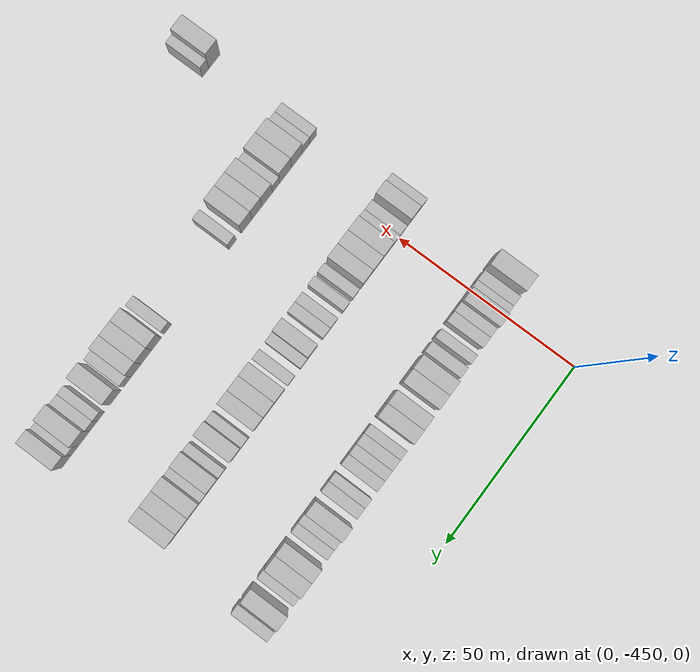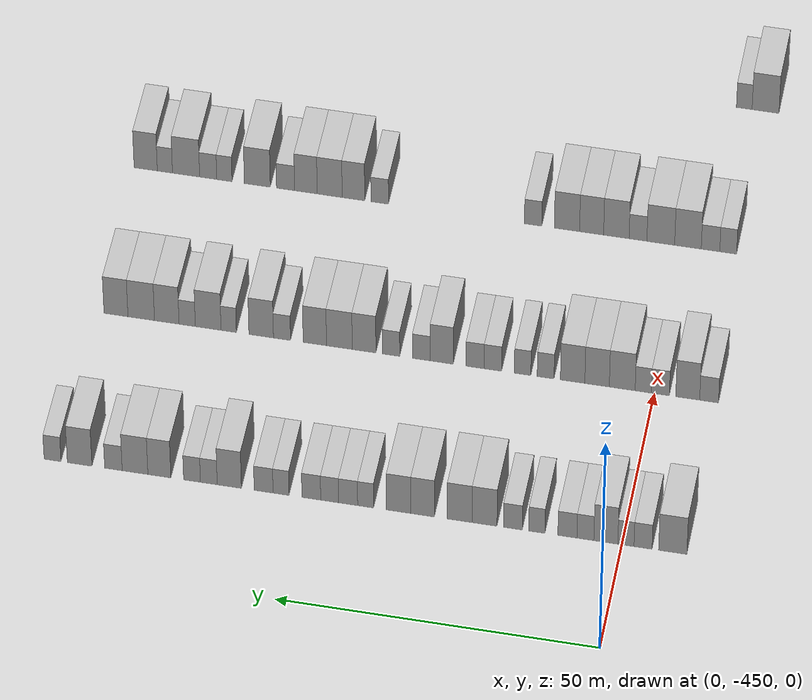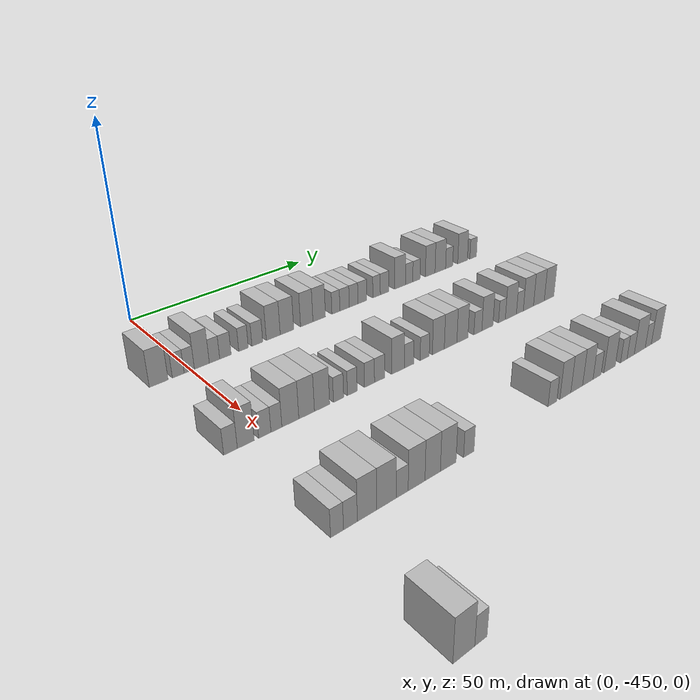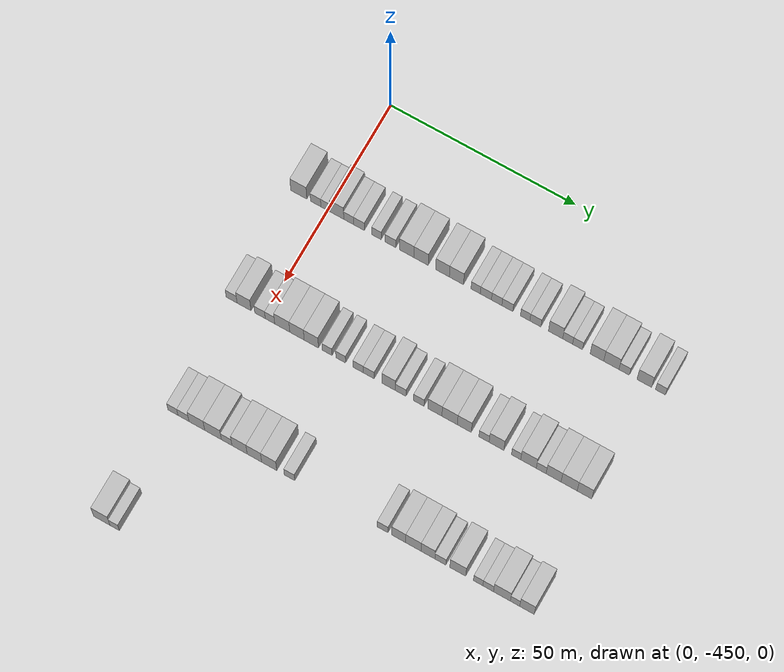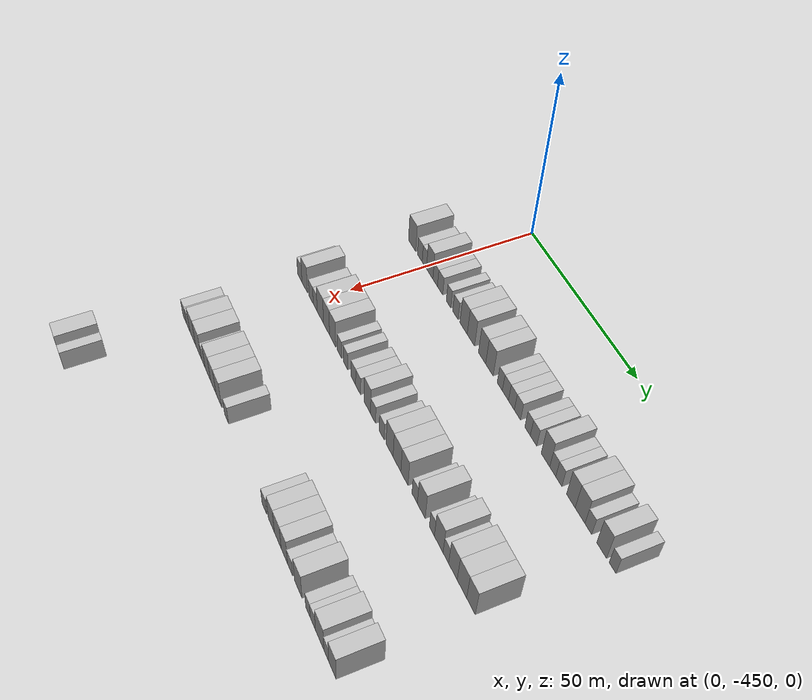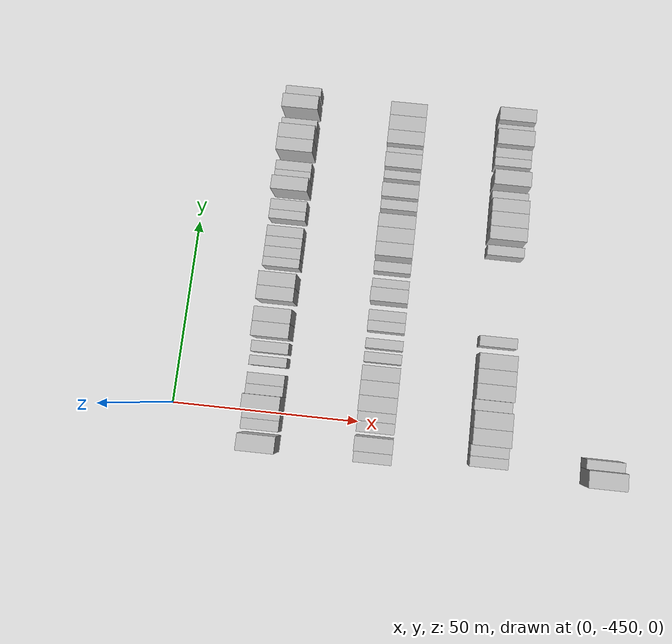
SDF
<sdf version="1.6">
 <world name="default">
  <model name="building_1">
   <static>1</static>
   <pose>25.0000 -457.8146 0 0.000000 0.000000 0.000000</pose>
   <link name="link">
    <pose>0 0 4.50 0 0 0</pose>
    <collision name="collision"><geometry><box><size>10.0000 4.3709 9.0000</size></box></geometry></collision>
    <visual name="visual">
     <cast_shadows>0</cast_shadows>
     <geometry><box><size>10.0000 4.3709 9.0000</size></box></geometry>
     <material>
      <script>
       <uri>model://HANNAS_wall/materials/scripts</uri>
       <uri>model://HANNAS_wall/materials/textures</uri>
       <name>vrc/HANNAS_wall</name>
      </script>
     </material>
    </visual>
   </link>
  </model>
  <model name="building_2">
   <static>1</static>
   <pose>25.0000 -453.2266 0 0.000000 0.000000 0.000000</pose>
   <link name="link">
    <pose>0 0 3.00 0 0 0</pose>
    <collision name="collision"><geometry><box><size>10.0000 2.8049 6.0000</size></box></geometry></collision>
    <visual name="visual">
     <cast_shadows>0</cast_shadows>
     <geometry><box><size>10.0000 2.8049 6.0000</size></box></geometry>
     <material>
      <script>
       <uri>model://HANNAS_wall/materials/scripts</uri>
       <uri>model://HANNAS_wall/materials/textures</uri>
       <name>vrc/HANNAS_wall</name>
      </script>
     </material>
    </visual>
   </link>
  </model>
  <model name="building_3">
   <static>1</static>
   <pose>25.0000 -450.5729 0 0.000000 0.000000 0.000000</pose>
   <link name="link">
    <pose>0 0 3.00 0 0 0</pose>
    <collision name="collision"><geometry><box><size>10.0000 2.5025 6.0000</size></box></geometry></collision>
    <visual name="visual">
     <cast_shadows>0</cast_shadows>
     <geometry><box><size>10.0000 2.5025 6.0000</size></box></geometry>
     <material>
      <script>
       <uri>model://HANNAS_wall/materials/scripts</uri>
       <uri>model://HANNAS_wall/materials/textures</uri>
       <name>vrc/HANNAS_wall</name>
      </script>
     </material>
    </visual>
   </link>
  </model>
  <model name="building_4">
   <static>1</static>
   <pose>25.0000 -447.4680 0 0.000000 0.000000 0.000000</pose>
   <link name="link">
    <pose>0 0 4.50 0 0 0</pose>
    <collision name="collision"><geometry><box><size>10.0000 3.7072 9.0000</size></box></geometry></collision>
    <visual name="visual">
     <cast_shadows>0</cast_shadows>
     <geometry><box><size>10.0000 3.7072 9.0000</size></box></geometry>
     <material>
      <script>
       <uri>model://HANNAS_wall/materials/scripts</uri>
       <uri>model://HANNAS_wall/materials/textures</uri>
       <name>vrc/HANNAS_wall</name>
      </script>
     </material>
    </visual>
   </link>
  </model>
  <model name="building_5">
   <static>1</static>
   <pose>25.0000 -444.3006 0 0.000000 0.000000 0.000000</pose>
   <link name="link">
    <pose>0 0 3.00 0 0 0</pose>
    <collision name="collision"><geometry><box><size>10.0000 2.6276 6.0000</size></box></geometry></collision>
    <visual name="visual">
     <cast_shadows>0</cast_shadows>
     <geometry><box><size>10.0000 2.6276 6.0000</size></box></geometry>
     <material>
      <script>
       <uri>model://HANNAS_wall/materials/scripts</uri>
       <uri>model://HANNAS_wall/materials/textures</uri>
       <name>vrc/HANNAS_wall</name>
      </script>
     </material>
    </visual>
   </link>
  </model>
  <model name="building_6">
   <static>1</static>
   <pose>25.0000 -441.5114 0 0.000000 0.000000 0.000000</pose>
   <link name="link">
    <pose>0 0 3.00 0 0 0</pose>
    <collision name="collision"><geometry><box><size>10.0000 2.9508 6.0000</size></box></geometry></collision>
    <visual name="visual">
     <cast_shadows>0</cast_shadows>
     <geometry><box><size>10.0000 2.9508 6.0000</size></box></geometry>
     <material>
      <script>
       <uri>model://HANNAS_wall/materials/scripts</uri>
       <uri>model://HANNAS_wall/materials/textures</uri>
       <name>vrc/HANNAS_wall</name>
      </script>
     </material>
    </visual>
   </link>
  </model>
  <model name="building_7">
   <static>1</static>
   <pose>25.0000 -436.7794 0 0.000000 0.000000 0.000000</pose>
   <link name="link">
    <pose>0 0 3.00 0 0 0</pose>
    <collision name="collision"><geometry><box><size>10.0000 2.5132 6.0000</size></box></geometry></collision>
    <visual name="visual">
     <cast_shadows>0</cast_shadows>
     <geometry><box><size>10.0000 2.5132 6.0000</size></box></geometry>
     <material>
      <script>
       <uri>model://HANNAS_wall/materials/scripts</uri>
       <uri>model://HANNAS_wall/materials/textures</uri>
       <name>vrc/HANNAS_wall</name>
      </script>
     </material>
    </visual>
   </link>
  </model>
  <model name="building_8">
   <static>1</static>
   <pose>25.0000 -433.0568 0 0.000000 0.000000 0.000000</pose>
   <link name="link">
    <pose>0 0 3.00 0 0 0</pose>
    <collision name="collision"><geometry><box><size>10.0000 2.9321 6.0000</size></box></geometry></collision>
    <visual name="visual">
     <cast_shadows>0</cast_shadows>
     <geometry><box><size>10.0000 2.9321 6.0000</size></box></geometry>
     <material>
      <script>
       <uri>model://HANNAS_wall/materials/scripts</uri>
       <uri>model://HANNAS_wall/materials/textures</uri>
       <name>vrc/HANNAS_wall</name>
      </script>
     </material>
    </visual>
   </link>
  </model>
  <model name="building_9">
   <static>1</static>
   <pose>25.0000 -428.6497 0 0.000000 0.000000 0.000000</pose>
   <link name="link">
    <pose>0 0 4.50 0 0 0</pose>
    <collision name="collision"><geometry><box><size>10.0000 3.8821 9.0000</size></box></geometry></collision>
    <visual name="visual">
     <cast_shadows>0</cast_shadows>
     <geometry><box><size>10.0000 3.8821 9.0000</size></box></geometry>
     <material>
      <script>
       <uri>model://HANNAS_wall/materials/scripts</uri>
       <uri>model://HANNAS_wall/materials/textures</uri>
       <name>vrc/HANNAS_wall</name>
      </script>
     </material>
    </visual>
   </link>
  </model>
  <model name="building_10">
   <static>1</static>
   <pose>25.0000 -424.7814 0 0.000000 0.000000 0.000000</pose>
   <link name="link">
    <pose>0 0 4.50 0 0 0</pose>
    <collision name="collision"><geometry><box><size>10.0000 3.8546 9.0000</size></box></geometry></collision>
    <visual name="visual">
     <cast_shadows>0</cast_shadows>
     <geometry><box><size>10.0000 3.8546 9.0000</size></box></geometry>
     <material>
      <script>
       <uri>model://HANNAS_wall/materials/scripts</uri>
       <uri>model://HANNAS_wall/materials/textures</uri>
       <name>vrc/HANNAS_wall</name>
      </script>
     </material>
    </visual>
   </link>
  </model>
  <model name="building_11">
   <static>1</static>
   <pose>25.0000 -419.0202 0 0.000000 0.000000 0.000000</pose>
   <link name="link">
    <pose>0 0 4.50 0 0 0</pose>
    <collision name="collision"><geometry><box><size>10.0000 3.6678 9.0000</size></box></geometry></collision>
    <visual name="visual">
     <cast_shadows>0</cast_shadows>
     <geometry><box><size>10.0000 3.6678 9.0000</size></box></geometry>
     <material>
      <script>
       <uri>model://HANNAS_wall/materials/scripts</uri>
       <uri>model://HANNAS_wall/materials/textures</uri>
       <name>vrc/HANNAS_wall</name>
      </script>
     </material>
    </visual>
   </link>
  </model>
  <model name="building_12">
   <static>1</static>
   <pose>25.0000 -415.2905 0 0.000000 0.000000 0.000000</pose>
   <link name="link">
    <pose>0 0 4.50 0 0 0</pose>
    <collision name="collision"><geometry><box><size>10.0000 3.7915 9.0000</size></box></geometry></collision>
    <visual name="visual">
     <cast_shadows>0</cast_shadows>
     <geometry><box><size>10.0000 3.7915 9.0000</size></box></geometry>
     <material>
      <script>
       <uri>model://HANNAS_wall/materials/scripts</uri>
       <uri>model://HANNAS_wall/materials/textures</uri>
       <name>vrc/HANNAS_wall</name>
      </script>
     </material>
    </visual>
   </link>
  </model>
  <model name="building_13">
   <static>1</static>
   <pose>25.0000 -410.1460 0 0.000000 0.000000 0.000000</pose>
   <link name="link">
    <pose>0 0 3.00 0 0 0</pose>
    <collision name="collision"><geometry><box><size>10.0000 2.4976 6.0000</size></box></geometry></collision>
    <visual name="visual">
     <cast_shadows>0</cast_shadows>
     <geometry><box><size>10.0000 2.4976 6.0000</size></box></geometry>
     <material>
      <script>
       <uri>model://HANNAS_wall/materials/scripts</uri>
       <uri>model://HANNAS_wall/materials/textures</uri>
       <name>vrc/HANNAS_wall</name>
      </script>
     </material>
    </visual>
   </link>
  </model>
  <model name="building_14">
   <static>1</static>
   <pose>25.0000 -407.4100 0 0.000000 0.000000 0.000000</pose>
   <link name="link">
    <pose>0 0 3.00 0 0 0</pose>
    <collision name="collision"><geometry><box><size>10.0000 2.9745 6.0000</size></box></geometry></collision>
    <visual name="visual">
     <cast_shadows>0</cast_shadows>
     <geometry><box><size>10.0000 2.9745 6.0000</size></box></geometry>
     <material>
      <script>
       <uri>model://HANNAS_wall/materials/scripts</uri>
       <uri>model://HANNAS_wall/materials/textures</uri>
       <name>vrc/HANNAS_wall</name>
      </script>
     </material>
    </visual>
   </link>
  </model>
  <model name="building_15">
   <static>1</static>
   <pose>25.0000 -404.5269 0 0.000000 0.000000 0.000000</pose>
   <link name="link">
    <pose>0 0 3.00 0 0 0</pose>
    <collision name="collision"><geometry><box><size>10.0000 2.7917 6.0000</size></box></geometry></collision>
    <visual name="visual">
     <cast_shadows>0</cast_shadows>
     <geometry><box><size>10.0000 2.7917 6.0000</size></box></geometry>
     <material>
      <script>
       <uri>model://HANNAS_wall/materials/scripts</uri>
       <uri>model://HANNAS_wall/materials/textures</uri>
       <name>vrc/HANNAS_wall</name>
      </script>
     </material>
    </visual>
   </link>
  </model>
  <model name="building_16">
   <static>1</static>
   <pose>25.0000 -401.6657 0 0.000000 0.000000 0.000000</pose>
   <link name="link">
    <pose>0 0 3.00 0 0 0</pose>
    <collision name="collision"><geometry><box><size>10.0000 2.9307 6.0000</size></box></geometry></collision>
    <visual name="visual">
     <cast_shadows>0</cast_shadows>
     <geometry><box><size>10.0000 2.9307 6.0000</size></box></geometry>
     <material>
      <script>
       <uri>model://HANNAS_wall/materials/scripts</uri>
       <uri>model://HANNAS_wall/materials/textures</uri>
       <name>vrc/HANNAS_wall</name>
      </script>
     </material>
    </visual>
   </link>
  </model>
  <model name="building_17">
   <static>1</static>
   <pose>25.0000 -396.9440 0 0.000000 0.000000 0.000000</pose>
   <link name="link">
    <pose>0 0 3.00 0 0 0</pose>
    <collision name="collision"><geometry><box><size>10.0000 2.5125 6.0000</size></box></geometry></collision>
    <visual name="visual">
     <cast_shadows>0</cast_shadows>
     <geometry><box><size>10.0000 2.5125 6.0000</size></box></geometry>
     <material>
      <script>
       <uri>model://HANNAS_wall/materials/scripts</uri>
       <uri>model://HANNAS_wall/materials/textures</uri>
       <name>vrc/HANNAS_wall</name>
      </script>
     </material>
    </visual>
   </link>
  </model>
  <model name="building_18">
   <static>1</static>
   <pose>25.0000 -394.2146 0 0.000000 0.000000 0.000000</pose>
   <link name="link">
    <pose>0 0 3.00 0 0 0</pose>
    <collision name="collision"><geometry><box><size>10.0000 2.9463 6.0000</size></box></geometry></collision>
    <visual name="visual">
     <cast_shadows>0</cast_shadows>
     <geometry><box><size>10.0000 2.9463 6.0000</size></box></geometry>
     <material>
      <script>
       <uri>model://HANNAS_wall/materials/scripts</uri>
       <uri>model://HANNAS_wall/materials/textures</uri>
       <name>vrc/HANNAS_wall</name>
      </script>
     </material>
    </visual>
   </link>
  </model>
  <model name="building_19">
   <static>1</static>
   <pose>25.0000 -388.8456 0 0.000000 0.000000 0.000000</pose>
   <link name="link">
    <pose>0 0 4.50 0 0 0</pose>
    <collision name="collision"><geometry><box><size>10.0000 3.7918 9.0000</size></box></geometry></collision>
    <visual name="visual">
     <cast_shadows>0</cast_shadows>
     <geometry><box><size>10.0000 3.7918 9.0000</size></box></geometry>
     <material>
      <script>
       <uri>model://HANNAS_wall/materials/scripts</uri>
       <uri>model://HANNAS_wall/materials/textures</uri>
       <name>vrc/HANNAS_wall</name>
      </script>
     </material>
    </visual>
   </link>
  </model>
  <model name="building_20">
   <static>1</static>
   <pose>25.0000 -385.6355 0 0.000000 0.000000 0.000000</pose>
   <link name="link">
    <pose>0 0 3.00 0 0 0</pose>
    <collision name="collision"><geometry><box><size>10.0000 2.6284 6.0000</size></box></geometry></collision>
    <visual name="visual">
     <cast_shadows>0</cast_shadows>
     <geometry><box><size>10.0000 2.6284 6.0000</size></box></geometry>
     <material>
      <script>
       <uri>model://HANNAS_wall/materials/scripts</uri>
       <uri>model://HANNAS_wall/materials/textures</uri>
       <name>vrc/HANNAS_wall</name>
      </script>
     </material>
    </visual>
   </link>
  </model>
  <model name="building_21">
   <static>1</static>
   <pose>25.0000 -383.0062 0 0.000000 0.000000 0.000000</pose>
   <link name="link">
    <pose>0 0 3.00 0 0 0</pose>
    <collision name="collision"><geometry><box><size>10.0000 2.6303 6.0000</size></box></geometry></collision>
    <visual name="visual">
     <cast_shadows>0</cast_shadows>
     <geometry><box><size>10.0000 2.6303 6.0000</size></box></geometry>
     <material>
      <script>
       <uri>model://HANNAS_wall/materials/scripts</uri>
       <uri>model://HANNAS_wall/materials/textures</uri>
       <name>vrc/HANNAS_wall</name>
      </script>
     </material>
    </visual>
   </link>
  </model>
  <model name="building_22">
   <static>1</static>
   <pose>25.0000 -377.8843 0 0.000000 0.000000 0.000000</pose>
   <link name="link">
    <pose>0 0 4.50 0 0 0</pose>
    <collision name="collision"><geometry><box><size>10.0000 3.6136 9.0000</size></box></geometry></collision>
    <visual name="visual">
     <cast_shadows>0</cast_shadows>
     <geometry><box><size>10.0000 3.6136 9.0000</size></box></geometry>
     <material>
      <script>
       <uri>model://HANNAS_wall/materials/scripts</uri>
       <uri>model://HANNAS_wall/materials/textures</uri>
       <name>vrc/HANNAS_wall</name>
      </script>
     </material>
    </visual>
   </link>
  </model>
  <model name="building_23">
   <static>1</static>
   <pose>25.0000 -374.0628 0 0.000000 0.000000 0.000000</pose>
   <link name="link">
    <pose>0 0 4.50 0 0 0</pose>
    <collision name="collision"><geometry><box><size>10.0000 4.0295 9.0000</size></box></geometry></collision>
    <visual name="visual">
     <cast_shadows>0</cast_shadows>
     <geometry><box><size>10.0000 4.0295 9.0000</size></box></geometry>
     <material>
      <script>
       <uri>model://HANNAS_wall/materials/scripts</uri>
       <uri>model://HANNAS_wall/materials/textures</uri>
       <name>vrc/HANNAS_wall</name>
      </script>
     </material>
    </visual>
   </link>
  </model>
  <model name="building_24">
   <static>1</static>
   <pose>25.0000 -370.6754 0 0.000000 0.000000 0.000000</pose>
   <link name="link">
    <pose>0 0 3.00 0 0 0</pose>
    <collision name="collision"><geometry><box><size>10.0000 2.7452 6.0000</size></box></geometry></collision>
    <visual name="visual">
     <cast_shadows>0</cast_shadows>
     <geometry><box><size>10.0000 2.7452 6.0000</size></box></geometry>
     <material>
      <script>
       <uri>model://HANNAS_wall/materials/scripts</uri>
       <uri>model://HANNAS_wall/materials/textures</uri>
       <name>vrc/HANNAS_wall</name>
      </script>
     </material>
    </visual>
   </link>
  </model>
  <model name="building_25">
   <static>1</static>
   <pose>25.0000 -365.3675 0 0.000000 0.000000 0.000000</pose>
   <link name="link">
    <pose>0 0 4.50 0 0 0</pose>
    <collision name="collision"><geometry><box><size>10.0000 3.8706 9.0000</size></box></geometry></collision>
    <visual name="visual">
     <cast_shadows>0</cast_shadows>
     <geometry><box><size>10.0000 3.8706 9.0000</size></box></geometry>
     <material>
      <script>
       <uri>model://HANNAS_wall/materials/scripts</uri>
       <uri>model://HANNAS_wall/materials/textures</uri>
       <name>vrc/HANNAS_wall</name>
      </script>
     </material>
    </visual>
   </link>
  </model>
  <model name="building_26">
   <static>1</static>
   <pose>25.0000 -361.1058 0 0.000000 0.000000 0.000000</pose>
   <link name="link">
    <pose>0 0 3.00 0 0 0</pose>
    <collision name="collision"><geometry><box><size>10.0000 2.6527 6.0000</size></box></geometry></collision>
    <visual name="visual">
     <cast_shadows>0</cast_shadows>
     <geometry><box><size>10.0000 2.6527 6.0000</size></box></geometry>
     <material>
      <script>
       <uri>model://HANNAS_wall/materials/scripts</uri>
       <uri>model://HANNAS_wall/materials/textures</uri>
       <name>vrc/HANNAS_wall</name>
      </script>
     </material>
    </visual>
   </link>
  </model>
  <model name="building_226">
   <static>1</static>
   <pose>55.0000 -458.5205 0 0.000000 0.000000 0.000000</pose>
   <link name="link">
    <pose>0 0 3.00 0 0 0</pose>
    <collision name="collision"><geometry><box><size>10.0000 2.9590 6.0000</size></box></geometry></collision>
    <visual name="visual">
     <cast_shadows>0</cast_shadows>
     <geometry><box><size>10.0000 2.9590 6.0000</size></box></geometry>
     <material>
      <script>
       <uri>model://HANNAS_wall/materials/scripts</uri>
       <uri>model://HANNAS_wall/materials/textures</uri>
       <name>vrc/HANNAS_wall</name>
      </script>
     </material>
    </visual>
   </link>
  </model>
  <model name="building_227">
   <static>1</static>
   <pose>55.0000 -455.1631 0 0.000000 0.000000 0.000000</pose>
   <link name="link">
    <pose>0 0 4.50 0 0 0</pose>
    <collision name="collision"><geometry><box><size>10.0000 3.7557 9.0000</size></box></geometry></collision>
    <visual name="visual">
     <cast_shadows>0</cast_shadows>
     <geometry><box><size>10.0000 3.7557 9.0000</size></box></geometry>
     <material>
      <script>
       <uri>model://HANNAS_wall/materials/scripts</uri>
       <uri>model://HANNAS_wall/materials/textures</uri>
       <name>vrc/HANNAS_wall</name>
      </script>
     </material>
    </visual>
   </link>
  </model>
  <model name="building_228">
   <static>1</static>
   <pose>55.0000 -450.8732 0 0.000000 0.000000 0.000000</pose>
   <link name="link">
    <pose>0 0 3.00 0 0 0</pose>
    <collision name="collision"><geometry><box><size>10.0000 2.8242 6.0000</size></box></geometry></collision>
    <visual name="visual">
     <cast_shadows>0</cast_shadows>
     <geometry><box><size>10.0000 2.8242 6.0000</size></box></geometry>
     <material>
      <script>
       <uri>model://HANNAS_wall/materials/scripts</uri>
       <uri>model://HANNAS_wall/materials/textures</uri>
       <name>vrc/HANNAS_wall</name>
      </script>
     </material>
    </visual>
   </link>
  </model>
  <model name="building_229">
   <static>1</static>
   <pose>55.0000 -448.1859 0 0.000000 0.000000 0.000000</pose>
   <link name="link">
    <pose>0 0 3.00 0 0 0</pose>
    <collision name="collision"><geometry><box><size>10.0000 2.5504 6.0000</size></box></geometry></collision>
    <visual name="visual">
     <cast_shadows>0</cast_shadows>
     <geometry><box><size>10.0000 2.5504 6.0000</size></box></geometry>
     <material>
      <script>
       <uri>model://HANNAS_wall/materials/scripts</uri>
       <uri>model://HANNAS_wall/materials/textures</uri>
       <name>vrc/HANNAS_wall</name>
      </script>
     </material>
    </visual>
   </link>
  </model>
  <model name="building_230">
   <static>1</static>
   <pose>55.0000 -444.8802 0 0.000000 0.000000 0.000000</pose>
   <link name="link">
    <pose>0 0 4.50 0 0 0</pose>
    <collision name="collision"><geometry><box><size>10.0000 4.0610 9.0000</size></box></geometry></collision>
    <visual name="visual">
     <cast_shadows>0</cast_shadows>
     <geometry><box><size>10.0000 4.0610 9.0000</size></box></geometry>
     <material>
      <script>
       <uri>model://HANNAS_wall/materials/scripts</uri>
       <uri>model://HANNAS_wall/materials/textures</uri>
       <name>vrc/HANNAS_wall</name>
      </script>
     </material>
    </visual>
   </link>
  </model>
  <model name="building_231">
   <static>1</static>
   <pose>55.0000 -440.9243 0 0.000000 0.000000 0.000000</pose>
   <link name="link">
    <pose>0 0 4.50 0 0 0</pose>
    <collision name="collision"><geometry><box><size>10.0000 3.8509 9.0000</size></box></geometry></collision>
    <visual name="visual">
     <cast_shadows>0</cast_shadows>
     <geometry><box><size>10.0000 3.8509 9.0000</size></box></geometry>
     <material>
      <script>
       <uri>model://HANNAS_wall/materials/scripts</uri>
       <uri>model://HANNAS_wall/materials/textures</uri>
       <name>vrc/HANNAS_wall</name>
      </script>
     </material>
    </visual>
   </link>
  </model>
  <model name="building_232">
   <static>1</static>
   <pose>55.0000 -437.0763 0 0.000000 0.000000 0.000000</pose>
   <link name="link">
    <pose>0 0 4.50 0 0 0</pose>
    <collision name="collision"><geometry><box><size>10.0000 3.8453 9.0000</size></box></geometry></collision>
    <visual name="visual">
     <cast_shadows>0</cast_shadows>
     <geometry><box><size>10.0000 3.8453 9.0000</size></box></geometry>
     <material>
      <script>
       <uri>model://HANNAS_wall/materials/scripts</uri>
       <uri>model://HANNAS_wall/materials/textures</uri>
       <name>vrc/HANNAS_wall</name>
      </script>
     </material>
    </visual>
   </link>
  </model>
  <model name="building_233">
   <static>1</static>
   <pose>55.0000 -432.8257 0 0.000000 0.000000 0.000000</pose>
   <link name="link">
    <pose>0 0 3.00 0 0 0</pose>
    <collision name="collision"><geometry><box><size>10.0000 2.6558 6.0000</size></box></geometry></collision>
    <visual name="visual">
     <cast_shadows>0</cast_shadows>
     <geometry><box><size>10.0000 2.6558 6.0000</size></box></geometry>
     <material>
      <script>
       <uri>model://HANNAS_wall/materials/scripts</uri>
       <uri>model://HANNAS_wall/materials/textures</uri>
       <name>vrc/HANNAS_wall</name>
      </script>
     </material>
    </visual>
   </link>
  </model>
  <model name="building_234">
   <static>1</static>
   <pose>55.0000 -429.1979 0 0.000000 0.000000 0.000000</pose>
   <link name="link">
    <pose>0 0 3.00 0 0 0</pose>
    <collision name="collision"><geometry><box><size>10.0000 2.5998 6.0000</size></box></geometry></collision>
    <visual name="visual">
     <cast_shadows>0</cast_shadows>
     <geometry><box><size>10.0000 2.5998 6.0000</size></box></geometry>
     <material>
      <script>
       <uri>model://HANNAS_wall/materials/scripts</uri>
       <uri>model://HANNAS_wall/materials/textures</uri>
       <name>vrc/HANNAS_wall</name>
      </script>
     </material>
    </visual>
   </link>
  </model>
  <model name="building_235">
   <static>1</static>
   <pose>55.0000 -424.5097 0 0.000000 0.000000 0.000000</pose>
   <link name="link">
    <pose>0 0 3.00 0 0 0</pose>
    <collision name="collision"><geometry><box><size>10.0000 2.7767 6.0000</size></box></geometry></collision>
    <visual name="visual">
     <cast_shadows>0</cast_shadows>
     <geometry><box><size>10.0000 2.7767 6.0000</size></box></geometry>
     <material>
      <script>
       <uri>model://HANNAS_wall/materials/scripts</uri>
       <uri>model://HANNAS_wall/materials/textures</uri>
       <name>vrc/HANNAS_wall</name>
      </script>
     </material>
    </visual>
   </link>
  </model>
  <model name="building_236">
   <static>1</static>
   <pose>55.0000 -421.6836 0 0.000000 0.000000 0.000000</pose>
   <link name="link">
    <pose>0 0 3.00 0 0 0</pose>
    <collision name="collision"><geometry><box><size>10.0000 2.8755 6.0000</size></box></geometry></collision>
    <visual name="visual">
     <cast_shadows>0</cast_shadows>
     <geometry><box><size>10.0000 2.8755 6.0000</size></box></geometry>
     <material>
      <script>
       <uri>model://HANNAS_wall/materials/scripts</uri>
       <uri>model://HANNAS_wall/materials/textures</uri>
       <name>vrc/HANNAS_wall</name>
      </script>
     </material>
    </visual>
   </link>
  </model>
  <model name="building_237">
   <static>1</static>
   <pose>55.0000 -416.4143 0 0.000000 0.000000 0.000000</pose>
   <link name="link">
    <pose>0 0 4.50 0 0 0</pose>
    <collision name="collision"><geometry><box><size>10.0000 3.6630 9.0000</size></box></geometry></collision>
    <visual name="visual">
     <cast_shadows>0</cast_shadows>
     <geometry><box><size>10.0000 3.6630 9.0000</size></box></geometry>
     <material>
      <script>
       <uri>model://HANNAS_wall/materials/scripts</uri>
       <uri>model://HANNAS_wall/materials/textures</uri>
       <name>vrc/HANNAS_wall</name>
      </script>
     </material>
    </visual>
   </link>
  </model>
  <model name="building_238">
   <static>1</static>
   <pose>55.0000 -413.1836 0 0.000000 0.000000 0.000000</pose>
   <link name="link">
    <pose>0 0 3.00 0 0 0</pose>
    <collision name="collision"><geometry><box><size>10.0000 2.7984 6.0000</size></box></geometry></collision>
    <visual name="visual">
     <cast_shadows>0</cast_shadows>
     <geometry><box><size>10.0000 2.7984 6.0000</size></box></geometry>
     <material>
      <script>
       <uri>model://HANNAS_wall/materials/scripts</uri>
       <uri>model://HANNAS_wall/materials/textures</uri>
       <name>vrc/HANNAS_wall</name>
      </script>
     </material>
    </visual>
   </link>
  </model>
  <model name="building_239">
   <static>1</static>
   <pose>55.0000 -408.3996 0 0.000000 0.000000 0.000000</pose>
   <link name="link">
    <pose>0 0 3.00 0 0 0</pose>
    <collision name="collision"><geometry><box><size>10.0000 2.7697 6.0000</size></box></geometry></collision>
    <visual name="visual">
     <cast_shadows>0</cast_shadows>
     <geometry><box><size>10.0000 2.7697 6.0000</size></box></geometry>
     <material>
      <script>
       <uri>model://HANNAS_wall/materials/scripts</uri>
       <uri>model://HANNAS_wall/materials/textures</uri>
       <name>vrc/HANNAS_wall</name>
      </script>
     </material>
    </visual>
   </link>
  </model>
  <model name="building_240">
   <static>1</static>
   <pose>55.0000 -404.1343 0 0.000000 0.000000 0.000000</pose>
   <link name="link">
    <pose>0 0 4.50 0 0 0</pose>
    <collision name="collision"><geometry><box><size>10.0000 3.7609 9.0000</size></box></geometry></collision>
    <visual name="visual">
     <cast_shadows>0</cast_shadows>
     <geometry><box><size>10.0000 3.7609 9.0000</size></box></geometry>
     <material>
      <script>
       <uri>model://HANNAS_wall/materials/scripts</uri>
       <uri>model://HANNAS_wall/materials/textures</uri>
       <name>vrc/HANNAS_wall</name>
      </script>
     </material>
    </visual>
   </link>
  </model>
  <model name="building_241">
   <static>1</static>
   <pose>55.0000 -400.2145 0 0.000000 0.000000 0.000000</pose>
   <link name="link">
    <pose>0 0 4.50 0 0 0</pose>
    <collision name="collision"><geometry><box><size>10.0000 4.0786 9.0000</size></box></geometry></collision>
    <visual name="visual">
     <cast_shadows>0</cast_shadows>
     <geometry><box><size>10.0000 4.0786 9.0000</size></box></geometry>
     <material>
      <script>
       <uri>model://HANNAS_wall/materials/scripts</uri>
       <uri>model://HANNAS_wall/materials/textures</uri>
       <name>vrc/HANNAS_wall</name>
      </script>
     </material>
    </visual>
   </link>
  </model>
  <model name="building_242">
   <static>1</static>
   <pose>55.0000 -396.3263 0 0.000000 0.000000 0.000000</pose>
   <link name="link">
    <pose>0 0 4.50 0 0 0</pose>
    <collision name="collision"><geometry><box><size>10.0000 3.6978 9.0000</size></box></geometry></collision>
    <visual name="visual">
     <cast_shadows>0</cast_shadows>
     <geometry><box><size>10.0000 3.6978 9.0000</size></box></geometry>
     <material>
      <script>
       <uri>model://HANNAS_wall/materials/scripts</uri>
       <uri>model://HANNAS_wall/materials/textures</uri>
       <name>vrc/HANNAS_wall</name>
      </script>
     </material>
    </visual>
   </link>
  </model>
  <model name="building_243">
   <static>1</static>
   <pose>55.0000 -391.1186 0 0.000000 0.000000 0.000000</pose>
   <link name="link">
    <pose>0 0 3.00 0 0 0</pose>
    <collision name="collision"><geometry><box><size>10.0000 2.7177 6.0000</size></box></geometry></collision>
    <visual name="visual">
     <cast_shadows>0</cast_shadows>
     <geometry><box><size>10.0000 2.7177 6.0000</size></box></geometry>
     <material>
      <script>
       <uri>model://HANNAS_wall/materials/scripts</uri>
       <uri>model://HANNAS_wall/materials/textures</uri>
       <name>vrc/HANNAS_wall</name>
      </script>
     </material>
    </visual>
   </link>
  </model>
  <model name="building_244">
   <static>1</static>
   <pose>55.0000 -387.8129 0 0.000000 0.000000 0.000000</pose>
   <link name="link">
    <pose>0 0 4.50 0 0 0</pose>
    <collision name="collision"><geometry><box><size>10.0000 3.8936 9.0000</size></box></geometry></collision>
    <visual name="visual">
     <cast_shadows>0</cast_shadows>
     <geometry><box><size>10.0000 3.8936 9.0000</size></box></geometry>
     <material>
      <script>
       <uri>model://HANNAS_wall/materials/scripts</uri>
       <uri>model://HANNAS_wall/materials/textures</uri>
       <name>vrc/HANNAS_wall</name>
      </script>
     </material>
    </visual>
   </link>
  </model>
  <model name="building_245">
   <static>1</static>
   <pose>55.0000 -382.6464 0 0.000000 0.000000 0.000000</pose>
   <link name="link">
    <pose>0 0 3.00 0 0 0</pose>
    <collision name="collision"><geometry><box><size>10.0000 2.4394 6.0000</size></box></geometry></collision>
    <visual name="visual">
     <cast_shadows>0</cast_shadows>
     <geometry><box><size>10.0000 2.4394 6.0000</size></box></geometry>
     <material>
      <script>
       <uri>model://HANNAS_wall/materials/scripts</uri>
       <uri>model://HANNAS_wall/materials/textures</uri>
       <name>vrc/HANNAS_wall</name>
      </script>
     </material>
    </visual>
   </link>
  </model>
  <model name="building_246">
   <static>1</static>
   <pose>55.0000 -379.3807 0 0.000000 0.000000 0.000000</pose>
   <link name="link">
    <pose>0 0 4.50 0 0 0</pose>
    <collision name="collision"><geometry><box><size>10.0000 4.0921 9.0000</size></box></geometry></collision>
    <visual name="visual">
     <cast_shadows>0</cast_shadows>
     <geometry><box><size>10.0000 4.0921 9.0000</size></box></geometry>
     <material>
      <script>
       <uri>model://HANNAS_wall/materials/scripts</uri>
       <uri>model://HANNAS_wall/materials/textures</uri>
       <name>vrc/HANNAS_wall</name>
      </script>
     </material>
    </visual>
   </link>
  </model>
  <model name="building_247">
   <static>1</static>
   <pose>55.0000 -376.0385 0 0.000000 0.000000 0.000000</pose>
   <link name="link">
    <pose>0 0 3.00 0 0 0</pose>
    <collision name="collision"><geometry><box><size>10.0000 2.5923 6.0000</size></box></geometry></collision>
    <visual name="visual">
     <cast_shadows>0</cast_shadows>
     <geometry><box><size>10.0000 2.5923 6.0000</size></box></geometry>
     <material>
      <script>
       <uri>model://HANNAS_wall/materials/scripts</uri>
       <uri>model://HANNAS_wall/materials/textures</uri>
       <name>vrc/HANNAS_wall</name>
      </script>
     </material>
    </visual>
   </link>
  </model>
  <model name="building_248">
   <static>1</static>
   <pose>55.0000 -372.7859 0 0.000000 0.000000 0.000000</pose>
   <link name="link">
    <pose>0 0 4.50 0 0 0</pose>
    <collision name="collision"><geometry><box><size>10.0000 3.9130 9.0000</size></box></geometry></collision>
    <visual name="visual">
     <cast_shadows>0</cast_shadows>
     <geometry><box><size>10.0000 3.9130 9.0000</size></box></geometry>
     <material>
      <script>
       <uri>model://HANNAS_wall/materials/scripts</uri>
       <uri>model://HANNAS_wall/materials/textures</uri>
       <name>vrc/HANNAS_wall</name>
      </script>
     </material>
    </visual>
   </link>
  </model>
  <model name="building_249">
   <static>1</static>
   <pose>55.0000 -368.7113 0 0.000000 0.000000 0.000000</pose>
   <link name="link">
    <pose>0 0 4.50 0 0 0</pose>
    <collision name="collision"><geometry><box><size>10.0000 4.2363 9.0000</size></box></geometry></collision>
    <visual name="visual">
     <cast_shadows>0</cast_shadows>
     <geometry><box><size>10.0000 4.2363 9.0000</size></box></geometry>
     <material>
      <script>
       <uri>model://HANNAS_wall/materials/scripts</uri>
       <uri>model://HANNAS_wall/materials/textures</uri>
       <name>vrc/HANNAS_wall</name>
      </script>
     </material>
    </visual>
   </link>
  </model>
  <model name="building_250">
   <static>1</static>
   <pose>55.0000 -364.6864 0 0.000000 0.000000 0.000000</pose>
   <link name="link">
    <pose>0 0 4.50 0 0 0</pose>
    <collision name="collision"><geometry><box><size>10.0000 3.8134 9.0000</size></box></geometry></collision>
    <visual name="visual">
     <cast_shadows>0</cast_shadows>
     <geometry><box><size>10.0000 3.8134 9.0000</size></box></geometry>
     <material>
      <script>
       <uri>model://HANNAS_wall/materials/scripts</uri>
       <uri>model://HANNAS_wall/materials/textures</uri>
       <name>vrc/HANNAS_wall</name>
      </script>
     </material>
    </visual>
   </link>
  </model>
  <model name="building_464">
   <static>1</static>
   <pose>85.0000 -456.6577 0 0.000000 0.000000 0.000000</pose>
   <link name="link">
    <pose>0 0 3.00 0 0 0</pose>
    <collision name="collision"><geometry><box><size>10.0000 2.6846 6.0000</size></box></geometry></collision>
    <visual name="visual">
     <cast_shadows>0</cast_shadows>
     <geometry><box><size>10.0000 2.6846 6.0000</size></box></geometry>
     <material>
      <script>
       <uri>model://HANNAS_wall/materials/scripts</uri>
       <uri>model://HANNAS_wall/materials/textures</uri>
       <name>vrc/HANNAS_wall</name>
      </script>
     </material>
    </visual>
   </link>
  </model>
  <model name="building_465">
   <static>1</static>
   <pose>85.0000 -453.8391 0 0.000000 0.000000 0.000000</pose>
   <link name="link">
    <pose>0 0 3.00 0 0 0</pose>
    <collision name="collision"><geometry><box><size>10.0000 2.9524 6.0000</size></box></geometry></collision>
    <visual name="visual">
     <cast_shadows>0</cast_shadows>
     <geometry><box><size>10.0000 2.9524 6.0000</size></box></geometry>
     <material>
      <script>
       <uri>model://HANNAS_wall/materials/scripts</uri>
       <uri>model://HANNAS_wall/materials/textures</uri>
       <name>vrc/HANNAS_wall</name>
      </script>
     </material>
    </visual>
   </link>
  </model>
  <model name="building_466">
   <static>1</static>
   <pose>85.0000 -450.2421 0 0.000000 0.000000 0.000000</pose>
   <link name="link">
    <pose>0 0 4.50 0 0 0</pose>
    <collision name="collision"><geometry><box><size>10.0000 4.2417 9.0000</size></box></geometry></collision>
    <visual name="visual">
     <cast_shadows>0</cast_shadows>
     <geometry><box><size>10.0000 4.2417 9.0000</size></box></geometry>
     <material>
      <script>
       <uri>model://HANNAS_wall/materials/scripts</uri>
       <uri>model://HANNAS_wall/materials/textures</uri>
       <name>vrc/HANNAS_wall</name>
      </script>
     </material>
    </visual>
   </link>
  </model>
  <model name="building_467">
   <static>1</static>
   <pose>85.0000 -445.9069 0 0.000000 0.000000 0.000000</pose>
   <link name="link">
    <pose>0 0 4.50 0 0 0</pose>
    <collision name="collision"><geometry><box><size>10.0000 4.4287 9.0000</size></box></geometry></collision>
    <visual name="visual">
     <cast_shadows>0</cast_shadows>
     <geometry><box><size>10.0000 4.4287 9.0000</size></box></geometry>
     <material>
      <script>
       <uri>model://HANNAS_wall/materials/scripts</uri>
       <uri>model://HANNAS_wall/materials/textures</uri>
       <name>vrc/HANNAS_wall</name>
      </script>
     </material>
    </visual>
   </link>
  </model>
  <model name="building_468">
   <static>1</static>
   <pose>85.0000 -442.2720 0 0.000000 0.000000 0.000000</pose>
   <link name="link">
    <pose>0 0 3.00 0 0 0</pose>
    <collision name="collision"><geometry><box><size>10.0000 2.8410 6.0000</size></box></geometry></collision>
    <visual name="visual">
     <cast_shadows>0</cast_shadows>
     <geometry><box><size>10.0000 2.8410 6.0000</size></box></geometry>
     <material>
      <script>
       <uri>model://HANNAS_wall/materials/scripts</uri>
       <uri>model://HANNAS_wall/materials/textures</uri>
       <name>vrc/HANNAS_wall</name>
      </script>
     </material>
    </visual>
   </link>
  </model>
  <model name="building_469">
   <static>1</static>
   <pose>85.0000 -438.8177 0 0.000000 0.000000 0.000000</pose>
   <link name="link">
    <pose>0 0 4.50 0 0 0</pose>
    <collision name="collision"><geometry><box><size>10.0000 4.0677 9.0000</size></box></geometry></collision>
    <visual name="visual">
     <cast_shadows>0</cast_shadows>
     <geometry><box><size>10.0000 4.0677 9.0000</size></box></geometry>
     <material>
      <script>
       <uri>model://HANNAS_wall/materials/scripts</uri>
       <uri>model://HANNAS_wall/materials/textures</uri>
       <name>vrc/HANNAS_wall</name>
      </script>
     </material>
    </visual>
   </link>
  </model>
  <model name="building_470">
   <static>1</static>
   <pose>85.0000 -434.8615 0 0.000000 0.000000 0.000000</pose>
   <link name="link">
    <pose>0 0 4.50 0 0 0</pose>
    <collision name="collision"><geometry><box><size>10.0000 3.8447 9.0000</size></box></geometry></collision>
    <visual name="visual">
     <cast_shadows>0</cast_shadows>
     <geometry><box><size>10.0000 3.8447 9.0000</size></box></geometry>
     <material>
      <script>
       <uri>model://HANNAS_wall/materials/scripts</uri>
       <uri>model://HANNAS_wall/materials/textures</uri>
       <name>vrc/HANNAS_wall</name>
      </script>
     </material>
    </visual>
   </link>
  </model>
  <model name="building_471">
   <static>1</static>
   <pose>85.0000 -430.9258 0 0.000000 0.000000 0.000000</pose>
   <link name="link">
    <pose>0 0 4.50 0 0 0</pose>
    <collision name="collision"><geometry><box><size>10.0000 4.0266 9.0000</size></box></geometry></collision>
    <visual name="visual">
     <cast_shadows>0</cast_shadows>
     <geometry><box><size>10.0000 4.0266 9.0000</size></box></geometry>
     <material>
      <script>
       <uri>model://HANNAS_wall/materials/scripts</uri>
       <uri>model://HANNAS_wall/materials/textures</uri>
       <name>vrc/HANNAS_wall</name>
      </script>
     </material>
    </visual>
   </link>
  </model>
  <model name="building_472">
   <static>1</static>
   <pose>85.0000 -425.5177 0 0.000000 0.000000 0.000000</pose>
   <link name="link">
    <pose>0 0 3.00 0 0 0</pose>
    <collision name="collision"><geometry><box><size>10.0000 2.7897 6.0000</size></box></geometry></collision>
    <visual name="visual">
     <cast_shadows>0</cast_shadows>
     <geometry><box><size>10.0000 2.7897 6.0000</size></box></geometry>
     <material>
      <script>
       <uri>model://HANNAS_wall/materials/scripts</uri>
       <uri>model://HANNAS_wall/materials/textures</uri>
       <name>vrc/HANNAS_wall</name>
      </script>
     </material>
    </visual>
   </link>
  </model>
  <model name="building_473">
   <static>1</static>
   <pose>85.0000 -400.8874 0 0.000000 0.000000 0.000000</pose>
   <link name="link">
    <pose>0 0 3.00 0 0 0</pose>
    <collision name="collision"><geometry><box><size>10.0000 2.8236 6.0000</size></box></geometry></collision>
    <visual name="visual">
     <cast_shadows>0</cast_shadows>
     <geometry><box><size>10.0000 2.8236 6.0000</size></box></geometry>
     <material>
      <script>
       <uri>model://HANNAS_wall/materials/scripts</uri>
       <uri>model://HANNAS_wall/materials/textures</uri>
       <name>vrc/HANNAS_wall</name>
      </script>
     </material>
    </visual>
   </link>
  </model>
  <model name="building_474">
   <static>1</static>
   <pose>85.0000 -396.6570 0 0.000000 0.000000 0.000000</pose>
   <link name="link">
    <pose>0 0 4.50 0 0 0</pose>
    <collision name="collision"><geometry><box><size>10.0000 3.6371 9.0000</size></box></geometry></collision>
    <visual name="visual">
     <cast_shadows>0</cast_shadows>
     <geometry><box><size>10.0000 3.6371 9.0000</size></box></geometry>
     <material>
      <script>
       <uri>model://HANNAS_wall/materials/scripts</uri>
       <uri>model://HANNAS_wall/materials/textures</uri>
       <name>vrc/HANNAS_wall</name>
      </script>
     </material>
    </visual>
   </link>
  </model>
  <model name="building_475">
   <static>1</static>
   <pose>85.0000 -392.8269 0 0.000000 0.000000 0.000000</pose>
   <link name="link">
    <pose>0 0 4.50 0 0 0</pose>
    <collision name="collision"><geometry><box><size>10.0000 4.0232 9.0000</size></box></geometry></collision>
    <visual name="visual">
     <cast_shadows>0</cast_shadows>
     <geometry><box><size>10.0000 4.0232 9.0000</size></box></geometry>
     <material>
      <script>
       <uri>model://HANNAS_wall/materials/scripts</uri>
       <uri>model://HANNAS_wall/materials/textures</uri>
       <name>vrc/HANNAS_wall</name>
      </script>
     </material>
    </visual>
   </link>
  </model>
  <model name="building_476">
   <static>1</static>
   <pose>85.0000 -388.9964 0 0.000000 0.000000 0.000000</pose>
   <link name="link">
    <pose>0 0 4.50 0 0 0</pose>
    <collision name="collision"><geometry><box><size>10.0000 3.6378 9.0000</size></box></geometry></collision>
    <visual name="visual">
     <cast_shadows>0</cast_shadows>
     <geometry><box><size>10.0000 3.6378 9.0000</size></box></geometry>
     <material>
      <script>
       <uri>model://HANNAS_wall/materials/scripts</uri>
       <uri>model://HANNAS_wall/materials/textures</uri>
       <name>vrc/HANNAS_wall</name>
      </script>
     </material>
    </visual>
   </link>
  </model>
  <model name="building_477">
   <static>1</static>
   <pose>85.0000 -385.7222 0 0.000000 0.000000 0.000000</pose>
   <link name="link">
    <pose>0 0 3.00 0 0 0</pose>
    <collision name="collision"><geometry><box><size>10.0000 2.9106 6.0000</size></box></geometry></collision>
    <visual name="visual">
     <cast_shadows>0</cast_shadows>
     <geometry><box><size>10.0000 2.9106 6.0000</size></box></geometry>
     <material>
      <script>
       <uri>model://HANNAS_wall/materials/scripts</uri>
       <uri>model://HANNAS_wall/materials/textures</uri>
       <name>vrc/HANNAS_wall</name>
      </script>
     </material>
    </visual>
   </link>
  </model>
  <model name="building_478">
   <static>1</static>
   <pose>85.0000 -381.1741 0 0.000000 0.000000 0.000000</pose>
   <link name="link">
    <pose>0 0 4.50 0 0 0</pose>
    <collision name="collision"><geometry><box><size>10.0000 4.1855 9.0000</size></box></geometry></collision>
    <visual name="visual">
     <cast_shadows>0</cast_shadows>
     <geometry><box><size>10.0000 4.1855 9.0000</size></box></geometry>
     <material>
      <script>
       <uri>model://HANNAS_wall/materials/scripts</uri>
       <uri>model://HANNAS_wall/materials/textures</uri>
       <name>vrc/HANNAS_wall</name>
      </script>
     </material>
    </visual>
   </link>
  </model>
  <model name="building_479">
   <static>1</static>
   <pose>85.0000 -375.8474 0 0.000000 0.000000 0.000000</pose>
   <link name="link">
    <pose>0 0 3.00 0 0 0</pose>
    <collision name="collision"><geometry><box><size>10.0000 2.4679 6.0000</size></box></geometry></collision>
    <visual name="visual">
     <cast_shadows>0</cast_shadows>
     <geometry><box><size>10.0000 2.4679 6.0000</size></box></geometry>
     <material>
      <script>
       <uri>model://HANNAS_wall/materials/scripts</uri>
       <uri>model://HANNAS_wall/materials/textures</uri>
       <name>vrc/HANNAS_wall</name>
      </script>
     </material>
    </visual>
   </link>
  </model>
  <model name="building_480">
   <static>1</static>
   <pose>85.0000 -373.2284 0 0.000000 0.000000 0.000000</pose>
   <link name="link">
    <pose>0 0 3.00 0 0 0</pose>
    <collision name="collision"><geometry><box><size>10.0000 2.7701 6.0000</size></box></geometry></collision>
    <visual name="visual">
     <cast_shadows>0</cast_shadows>
     <geometry><box><size>10.0000 2.7701 6.0000</size></box></geometry>
     <material>
      <script>
       <uri>model://HANNAS_wall/materials/scripts</uri>
       <uri>model://HANNAS_wall/materials/textures</uri>
       <name>vrc/HANNAS_wall</name>
      </script>
     </material>
    </visual>
   </link>
  </model>
  <model name="building_481">
   <static>1</static>
   <pose>85.0000 -369.6460 0 0.000000 0.000000 0.000000</pose>
   <link name="link">
    <pose>0 0 4.50 0 0 0</pose>
    <collision name="collision"><geometry><box><size>10.0000 4.3948 9.0000</size></box></geometry></collision>
    <visual name="visual">
     <cast_shadows>0</cast_shadows>
     <geometry><box><size>10.0000 4.3948 9.0000</size></box></geometry>
     <material>
      <script>
       <uri>model://HANNAS_wall/materials/scripts</uri>
       <uri>model://HANNAS_wall/materials/textures</uri>
       <name>vrc/HANNAS_wall</name>
      </script>
     </material>
    </visual>
   </link>
  </model>
  <model name="building_482">
   <static>1</static>
   <pose>85.0000 -366.2199 0 0.000000 0.000000 0.000000</pose>
   <link name="link">
    <pose>0 0 3.00 0 0 0</pose>
    <collision name="collision"><geometry><box><size>10.0000 2.4573 6.0000</size></box></geometry></collision>
    <visual name="visual">
     <cast_shadows>0</cast_shadows>
     <geometry><box><size>10.0000 2.4573 6.0000</size></box></geometry>
     <material>
      <script>
       <uri>model://HANNAS_wall/materials/scripts</uri>
       <uri>model://HANNAS_wall/materials/textures</uri>
       <name>vrc/HANNAS_wall</name>
      </script>
     </material>
    </visual>
   </link>
  </model>
  <model name="building_483">
   <static>1</static>
   <pose>85.0000 -363.1154 0 0.000000 0.000000 0.000000</pose>
   <link name="link">
    <pose>0 0 4.50 0 0 0</pose>
    <collision name="collision"><geometry><box><size>10.0000 3.7517 9.0000</size></box></geometry></collision>
    <visual name="visual">
     <cast_shadows>0</cast_shadows>
     <geometry><box><size>10.0000 3.7517 9.0000</size></box></geometry>
     <material>
      <script>
       <uri>model://HANNAS_wall/materials/scripts</uri>
       <uri>model://HANNAS_wall/materials/textures</uri>
       <name>vrc/HANNAS_wall</name>
      </script>
     </material>
    </visual>
   </link>
  </model>
  <model name="building_682">
   <static>1</static>
   <pose>115.0000 -457.8258 0 0.000000 0.000000 0.000000</pose>
   <link name="link">
    <pose>0 0 4.50 0 0 0</pose>
    <collision name="collision"><geometry><box><size>10.0000 4.3484 9.0000</size></box></geometry></collision>
    <visual name="visual">
     <cast_shadows>0</cast_shadows>
     <geometry><box><size>10.0000 4.3484 9.0000</size></box></geometry>
     <material>
      <script>
       <uri>model://HANNAS_wall/materials/scripts</uri>
       <uri>model://HANNAS_wall/materials/textures</uri>
       <name>vrc/HANNAS_wall</name>
      </script>
     </material>
    </visual>
   </link>
  </model>
  <model name="building_683">
   <static>1</static>
   <pose>115.0000 -454.3898 0 0.000000 0.000000 0.000000</pose>
   <link name="link">
    <pose>0 0 3.00 0 0 0</pose>
    <collision name="collision"><geometry><box><size>10.0000 2.5236 6.0000</size></box></geometry></collision>
    <visual name="visual">
     <cast_shadows>0</cast_shadows>
     <geometry><box><size>10.0000 2.5236 6.0000</size></box></geometry>
     <material>
      <script>
       <uri>model://HANNAS_wall/materials/scripts</uri>
       <uri>model://HANNAS_wall/materials/textures</uri>
       <name>vrc/HANNAS_wall</name>
      </script>
     </material>
    </visual>
   </link>
  </model>
 </world>
</sdf>
